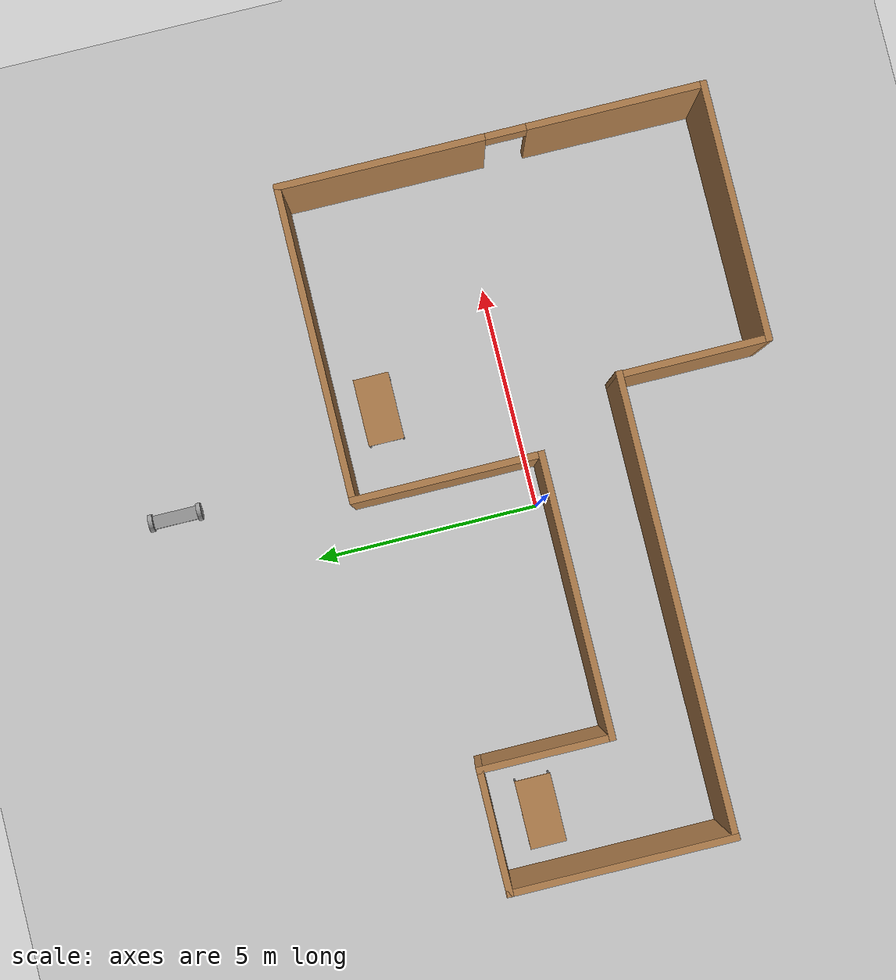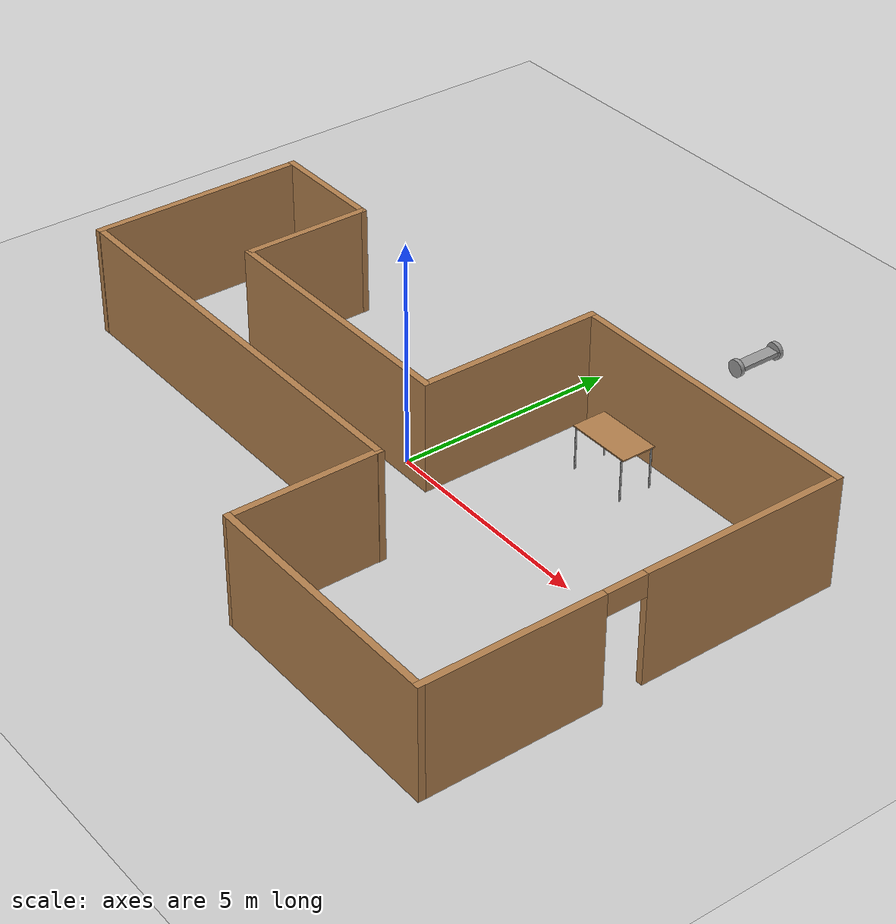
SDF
<sdf version="1.7">
 <world name="default">
  <model name="ground_plane">
   <static>1</static>
   <link name="link">
    <collision name="collision">
     <geometry><plane><normal>0 0 1</normal><size>100 100</size></plane></geometry>
     <surface>
      <contact><collide_bitmask>65535</collide_bitmask></contact>
      <friction><ode><mu>100</mu><mu2>50</mu2></ode></friction>
     </surface>
    </collision>
    <visual name="visual">
     <cast_shadows>0</cast_shadows>
     <geometry><plane><normal>0 0 1</normal><size>100 100</size></plane></geometry>
     <material>
      <script><uri>file://media/materials/scripts/gazebo.material</uri><name>Gazebo/Grey</name></script>
     </material>
    </visual>
   </link>
  </model>
  <model name="robot">
   <link name="link_1">
    <inertial>
     <mass>1</mass>
     <inertia>
      <ixx>0.166667</ixx>
      <ixy>0</ixy>
      <ixz>0</ixz>
      <iyy>0.166667</iyy>
      <iyz>0</iyz>
      <izz>0.166667</izz>
     </inertia>
    </inertial>
    <visual name="visual">
     <geometry><box><size>0.3 1 0.1</size></box></geometry>
     <material>
      <lighting>1</lighting>
      <script><uri>file://media/materials/scripts/gazebo.material</uri><name>Gazebo/Grey</name></script>
      <shader type="pixel"><normal_map>__default__</normal_map></shader>
      <ambient>0.3 0.3 0.3 1</ambient>
      <diffuse>0.7 0.7 0.7 1</diffuse>
      <specular>0.01 0.01 0.01 1</specular>
      <emissive>0 0 0 1</emissive>
     </material>
    </visual>
    <collision name="collision">
     <geometry><box><size>0.3 1 0.1</size></box></geometry>
     <surface>
      <friction>
       <ode><mu>1</mu><mu2>1</mu2><fdir1>0 0 0</fdir1><slip1>0</slip1><slip2>0</slip2></ode>
       <torsional>
        <coefficient>1</coefficient>
        <patch_radius>0</patch_radius>
        <surface_radius>0</surface_radius>
        <use_patch_radius>1</use_patch_radius>
        <ode><slip>0</slip></ode>
       </torsional>
      </friction>
      <bounce><restitution_coefficient>0</restitution_coefficient><threshold>1e+06</threshold></bounce>
      <contact>
       <collide_without_contact>0</collide_without_contact>
       <collide_without_contact_bitmask>1</collide_without_contact_bitmask>
       <collide_bitmask>1</collide_bitmask>
       <ode>
        <soft_cfm>0</soft_cfm>
        <soft_erp>0.2</soft_erp>
        <kp>1e+13</kp>
        <kd>1</kd>
        <max_vel>0.01</max_vel>
        <min_depth>0</min_depth>
       </ode>
       <bullet>
        <split_impulse>1</split_impulse>
        <split_impulse_penetration_threshold>-0.01</split_impulse_penetration_threshold>
        <soft_cfm>0</soft_cfm>
        <soft_erp>0.2</soft_erp>
        <kp>1e+13</kp>
        <kd>1</kd>
       </bullet>
      </contact>
     </surface>
    </collision>
   </link>
   <link name="link_2">
    <inertial>
     <mass>1</mass>
     <inertia><ixx>0.145833</ixx><ixy>0</ixy><ixz>0</ixz><iyy>0.145833</iyy><iyz>0</iyz><izz>0.125</izz></inertia>
    </inertial>
    <pose>0 -0.550019 0 1.5707 -0 0</pose>
    <visual name="visual">
     <geometry><cylinder><radius>0.2</radius><length>0.1</length></cylinder></geometry>
     <material>
      <lighting>1</lighting>
      <script><uri>file://media/materials/scripts/gazebo.material</uri><name>Gazebo/Grey</name></script>
      <shader type="pixel"><normal_map>__default__</normal_map></shader>
      <ambient>0.3 0.3 0.3 1</ambient>
      <diffuse>0.7 0.7 0.7 1</diffuse>
      <specular>0.01 0.01 0.01 1</specular>
      <emissive>0 0 0 1</emissive>
     </material>
    </visual>
    <collision name="collision">
     <geometry><cylinder><radius>0.2</radius><length>0.1</length></cylinder></geometry>
     <surface>
      <friction>
       <ode><mu>1</mu><mu2>1</mu2><fdir1>0 0 0</fdir1><slip1>0</slip1><slip2>0</slip2></ode>
       <torsional>
        <coefficient>1</coefficient>
        <patch_radius>0</patch_radius>
        <surface_radius>0</surface_radius>
        <use_patch_radius>1</use_patch_radius>
        <ode><slip>0</slip></ode>
       </torsional>
      </friction>
      <bounce><restitution_coefficient>0</restitution_coefficient><threshold>1e+06</threshold></bounce>
      <contact>
       <collide_without_contact>0</collide_without_contact>
       <collide_without_contact_bitmask>1</collide_without_contact_bitmask>
       <collide_bitmask>1</collide_bitmask>
       <ode>
        <soft_cfm>0</soft_cfm>
        <soft_erp>0.2</soft_erp>
        <kp>1e+13</kp>
        <kd>1</kd>
        <max_vel>0.01</max_vel>
        <min_depth>0</min_depth>
       </ode>
       <bullet>
        <split_impulse>1</split_impulse>
        <split_impulse_penetration_threshold>-0.01</split_impulse_penetration_threshold>
        <soft_cfm>0</soft_cfm>
        <soft_erp>0.2</soft_erp>
        <kp>1e+13</kp>
        <kd>1</kd>
       </bullet>
      </contact>
     </surface>
    </collision>
   </link>
   <link name="link_2_clone">
    <inertial>
     <mass>1</mass>
     <inertia><ixx>0.145833</ixx><ixy>0</ixy><ixz>0</ixz><iyy>0.145833</iyy><iyz>0</iyz><izz>0.125</izz></inertia>
    </inertial>
    <pose>0 0.550019 0 1.5707 -0 0</pose>
    <visual name="visual">
     <geometry><cylinder><radius>0.2</radius><length>0.1</length></cylinder></geometry>
     <material>
      <lighting>1</lighting>
      <script><uri>file://media/materials/scripts/gazebo.material</uri><name>Gazebo/Grey</name></script>
      <shader type="pixel"><normal_map>__default__</normal_map></shader>
      <ambient>0.3 0.3 0.3 1</ambient>
      <diffuse>0.7 0.7 0.7 1</diffuse>
      <specular>0.01 0.01 0.01 1</specular>
      <emissive>0 0 0 1</emissive>
     </material>
    </visual>
    <collision name="collision">
     <geometry><cylinder><radius>0.2</radius><length>0.1</length></cylinder></geometry>
     <surface>
      <friction>
       <ode><mu>1</mu><mu2>1</mu2><fdir1>0 0 0</fdir1><slip1>0</slip1><slip2>0</slip2></ode>
       <torsional>
        <coefficient>1</coefficient>
        <patch_radius>0</patch_radius>
        <surface_radius>0</surface_radius>
        <use_patch_radius>1</use_patch_radius>
        <ode><slip>0</slip></ode>
       </torsional>
      </friction>
      <bounce><restitution_coefficient>0</restitution_coefficient><threshold>1e+06</threshold></bounce>
      <contact>
       <collide_without_contact>0</collide_without_contact>
       <collide_without_contact_bitmask>1</collide_without_contact_bitmask>
       <collide_bitmask>1</collide_bitmask>
       <ode>
        <soft_cfm>0</soft_cfm>
        <soft_erp>0.2</soft_erp>
        <kp>1e+13</kp>
        <kd>1</kd>
        <max_vel>0.01</max_vel>
        <min_depth>0</min_depth>
       </ode>
       <bullet>
        <split_impulse>1</split_impulse>
        <split_impulse_penetration_threshold>-0.01</split_impulse_penetration_threshold>
        <soft_cfm>0</soft_cfm>
        <soft_erp>0.2</soft_erp>
        <kp>1e+13</kp>
        <kd>1</kd>
       </bullet>
      </contact>
     </surface>
    </collision>
   </link>
   <joint name="link_1_JOINT_0" type="revolute">
    <parent>link_1</parent>
    <child>link_2</child>
    <axis>
     <xyz>0 0 1</xyz>
     <limit>
      <lower>-1.79769e+308</lower>
      <upper>1.79769e+308</upper>
      <effort>-1</effort>
      <velocity>-1</velocity>
     </limit>
     <dynamics>
      <spring_reference>0</spring_reference>
      <spring_stiffness>0</spring_stiffness>
      <damping>0</damping>
     </dynamics>
    </axis>
    <physics>
     <ode><limit><cfm>0</cfm><erp>0.2</erp></limit><suspension><cfm>0</cfm><erp>0.2</erp></suspension></ode>
    </physics>
   </joint>
   <joint name="link_1_JOINT_1" type="revolute">
    <parent>link_1</parent>
    <child>link_2_clone</child>
    <axis>
     <xyz>0 0 1</xyz>
     <limit>
      <lower>-1.79769e+308</lower>
      <upper>1.79769e+308</upper>
      <effort>-1</effort>
      <velocity>-1</velocity>
     </limit>
     <dynamics>
      <spring_reference>0</spring_reference>
      <spring_stiffness>0</spring_stiffness>
      <damping>0</damping>
     </dynamics>
    </axis>
    <physics>
     <ode><limit><cfm>0</cfm><erp>0.2</erp></limit><suspension><cfm>0</cfm><erp>0.2</erp></suspension></ode>
    </physics>
   </joint>
   <static>0</static>
   <pose>1.65673 7.87221 0.200005 0 -0 0</pose>
  </model>
  <model name="building">
   <pose>0.01839 -0.458464 0 0 -0 0</pose>
   <link name="Wall_0">
    <collision name="Wall_0_Collision">
     <geometry><box><size>5 0.15 2.5</size></box></geometry>
     <pose>0 0 1.25 0 -0 0</pose>
    </collision>
    <visual name="Wall_0_Visual">
     <pose>0 0 1.25 0 -0 0</pose>
     <geometry><box><size>5 0.15 2.5</size></box></geometry>
     <material>
      <script><uri>file://media/materials/scripts/gazebo.material</uri><name>Gazebo/Wood</name></script>
      <ambient>1 1 1 1</ambient>
     </material>
     <meta><layer>0</layer></meta>
    </visual>
    <pose>-7.78488 0.627645 0 0 -0 1.5708</pose>
   </link>
   <link name="Wall_1">
    <collision name="Wall_1_Collision">
     <geometry><box><size>2.77048 0.15 2.5</size></box></geometry>
     <pose>0 0 1.25 0 -0 0</pose>
    </collision>
    <visual name="Wall_1_Visual">
     <pose>0 0 1.25 0 -0 0</pose>
     <geometry><box><size>2.77048 0.15 2.5</size></box></geometry>
     <material>
      <script><uri>file://media/materials/scripts/gazebo.material</uri><name>Gazebo/Wood</name></script>
      <ambient>1 1 1 1</ambient>
     </material>
     <meta><layer>0</layer></meta>
    </visual>
    <pose>-6.47488 3.06265 0 0 -0 0</pose>
   </link>
   <link name="Wall_2">
    <collision name="Wall_2_Collision">
     <geometry><box><size>3 0.15 2.5</size></box></geometry>
     <pose>0 0 1.25 0 -0 0</pose>
    </collision>
    <visual name="Wall_2_Visual">
     <pose>0 0 1.25 0 -0 0</pose>
     <geometry><box><size>3 0.15 2.5</size></box></geometry>
     <material>
      <script><uri>file://media/materials/scripts/gazebo.material</uri><name>Gazebo/Wood</name></script>
      <ambient>1 1 1 1</ambient>
     </material>
     <meta><layer>0</layer></meta>
    </visual>
    <pose>-5.16488 1.63765 0 0 -0 -1.5708</pose>
   </link>
   <link name="Wall_3">
    <collision name="Wall_3_Collision">
     <geometry><box><size>6.25 0.15 2.5</size></box></geometry>
     <pose>0 0 1.25 0 -0 0</pose>
    </collision>
    <visual name="Wall_3_Visual">
     <pose>0 0 1.25 0 -0 0</pose>
     <geometry><box><size>6.25 0.15 2.5</size></box></geometry>
     <material>
      <script><uri>file://media/materials/scripts/gazebo.material</uri><name>Gazebo/Wood</name></script>
      <ambient>1 1 1 1</ambient>
     </material>
     <meta><layer>0</layer></meta>
    </visual>
    <pose>-2.11488 0.212646 0 0 -0 0</pose>
   </link>
   <link name="Wall_4">
    <collision name="Wall_4_Collision">
     <geometry><box><size>4.25 0.15 2.5</size></box></geometry>
     <pose>0 0 1.25 0 -0 0</pose>
    </collision>
    <visual name="Wall_4_Visual">
     <pose>0 0 1.25 0 -0 0</pose>
     <geometry><box><size>4.25 0.15 2.5</size></box></geometry>
     <material>
      <script><uri>file://media/materials/scripts/gazebo.material</uri><name>Gazebo/Wood</name></script>
      <ambient>1 1 1 1</ambient>
     </material>
     <meta><layer>0</layer></meta>
    </visual>
    <pose>0.935119 2.26265 0 0 -0 1.5708</pose>
   </link>
   <link name="Wall_5">
    <collision name="Wall_5_Collision">
     <geometry><box><size>7 0.15 2.5</size></box></geometry>
     <pose>0 0 1.25 0 -0 0</pose>
    </collision>
    <visual name="Wall_5_Visual">
     <pose>0 0 1.25 0 -0 0</pose>
     <geometry><box><size>7 0.15 2.5</size></box></geometry>
     <material>
      <script><uri>file://media/materials/scripts/gazebo.material</uri><name>Gazebo/Wood</name></script>
      <ambient>1 1 1 1</ambient>
     </material>
     <meta><layer>0</layer></meta>
    </visual>
    <pose>4.36012 4.31265 0 0 -0 0</pose>
   </link>
   <link name="Wall_6">
    <pose>7.78512 -0.362354 0 0 -0 -1.5708</pose>
    <visual name="Wall_6_Visual_0">
     <pose>-2.4375 0 1.25 0 -0 0</pose>
     <geometry><box><size>4.625 0.15 2.5</size></box></geometry>
     <material>
      <script><uri>file://media/materials/scripts/gazebo.material</uri><name>Gazebo/Wood</name></script>
      <ambient>0.760784 0.662745 0.627451 1</ambient>
     </material>
     <meta><layer>0</layer></meta>
    </visual>
    <collision name="Wall_6_Collision_0">
     <geometry><box><size>4.625 0.15 2.5</size></box></geometry>
     <pose>-2.4375 0 1.25 0 -0 0</pose>
    </collision>
    <visual name="Wall_6_Visual_1">
     <pose>2.7625 0 1.25 0 -0 0</pose>
     <geometry><box><size>3.975 0.15 2.5</size></box></geometry>
     <material>
      <script><uri>file://media/materials/scripts/gazebo.material</uri><name>Gazebo/Wood</name></script>
      <ambient>0.760784 0.662745 0.627451 1</ambient>
     </material>
     <meta><layer>0</layer></meta>
    </visual>
    <collision name="Wall_6_Collision_1">
     <geometry><box><size>3.975 0.15 2.5</size></box></geometry>
     <pose>2.7625 0 1.25 0 -0 0</pose>
    </collision>
    <visual name="Wall_6_Visual_2">
     <pose>0.325 0 2.25 0 -0 0</pose>
     <geometry><box><size>0.9 0.15 0.5</size></box></geometry>
     <material>
      <script><uri>file://media/materials/scripts/gazebo.material</uri><name>Gazebo/Wood</name></script>
      <ambient>0.760784 0.662745 0.627451 1</ambient>
     </material>
     <meta><layer>0</layer></meta>
    </visual>
    <collision name="Wall_6_Collision_2">
     <geometry><box><size>0.9 0.15 0.5</size></box></geometry>
     <pose>0.325 0 2.25 0 -0 0</pose>
    </collision>
   </link>
   <link name="Wall_7">
    <collision name="Wall_7_Collision">
     <geometry><box><size>5.75 0.15 2.5</size></box></geometry>
     <pose>0 0 1.25 0 -0 0</pose>
    </collision>
    <visual name="Wall_7_Visual">
     <pose>0 0 1.25 0 -0 0</pose>
     <geometry><box><size>5.75 0.15 2.5</size></box></geometry>
     <material>
      <script><uri>file://media/materials/scripts/gazebo.material</uri><name>Gazebo/Wood</name></script>
      <ambient>1 1 1 1</ambient>
     </material>
     <meta><layer>0</layer></meta>
    </visual>
    <pose>4.98512 -5.03735 0 0 -0 3.14159</pose>
   </link>
   <link name="Wall_8">
    <collision name="Wall_8_Collision">
     <geometry><box><size>3.40014 0.15 2.5</size></box></geometry>
     <pose>0 0 1.25 0 -0 0</pose>
    </collision>
    <visual name="Wall_8_Visual">
     <pose>0 0 1.25 0 -0 0</pose>
     <geometry><box><size>3.40014 0.15 2.5</size></box></geometry>
     <material>
      <script><uri>file://media/materials/scripts/gazebo.material</uri><name>Gazebo/Wood</name></script>
      <ambient>1 1 1 1</ambient>
     </material>
     <meta><layer>0</layer></meta>
    </visual>
    <pose>2.18012 -3.41235 0 0 -0 1.57387</pose>
   </link>
   <link name="Wall_9">
    <collision name="Wall_9_Collision">
     <geometry><box><size>10 0.15 2.5</size></box></geometry>
     <pose>0 0 1.25 0 -0 0</pose>
    </collision>
    <visual name="Wall_9_Visual">
     <pose>0 0 1.25 0 -0 0</pose>
     <geometry><box><size>10 0.15 2.5</size></box></geometry>
     <material>
      <script><uri>file://media/materials/scripts/gazebo.material</uri><name>Gazebo/Wood</name></script>
      <ambient>1 1 1 1</ambient>
     </material>
     <meta><layer>0</layer></meta>
    </visual>
    <pose>-2.73988 -1.78735 0 0 -0 3.14159</pose>
   </link>
   <static>1</static>
  </model>
  <model name="table_0">
   <static>1</static>
   <link name="link">
    <collision name="surface">
     <pose>0 0 1 0 -0 0</pose>
     <geometry><box><size>1.5 0.8 0.03</size></box></geometry>
     <surface><friction><ode><mu>0.6</mu><mu2>0.6</mu2></ode></friction></surface>
    </collision>
    <visual name="visual1">
     <pose>0 0 1 0 -0 0</pose>
     <geometry><box><size>1.5 0.8 0.03</size></box></geometry>
     <material>
      <script><uri>file://media/materials/scripts/gazebo.material</uri><name>Gazebo/Wood</name></script>
     </material>
    </visual>
    <collision name="front_left_leg">
     <pose>0.68 0.38 0.5 0 -0 0</pose>
     <geometry><cylinder><radius>0.02</radius><length>1</length></cylinder></geometry>
    </collision>
    <visual name="front_left_leg">
     <pose>0.68 0.38 0.5 0 -0 0</pose>
     <geometry><cylinder><radius>0.02</radius><length>1</length></cylinder></geometry>
     <material>
      <script><uri>file://media/materials/scripts/gazebo.material</uri><name>Gazebo/Grey</name></script>
     </material>
    </visual>
    <collision name="front_right_leg">
     <pose>0.68 -0.38 0.5 0 -0 0</pose>
     <geometry><cylinder><radius>0.02</radius><length>1</length></cylinder></geometry>
    </collision>
    <visual name="front_right_leg">
     <pose>0.68 -0.38 0.5 0 -0 0</pose>
     <geometry><cylinder><radius>0.02</radius><length>1</length></cylinder></geometry>
     <material>
      <script><uri>file://media/materials/scripts/gazebo.material</uri><name>Gazebo/Grey</name></script>
     </material>
    </visual>
    <collision name="back_right_leg">
     <pose>-0.68 -0.38 0.5 0 -0 0</pose>
     <geometry><cylinder><radius>0.02</radius><length>1</length></cylinder></geometry>
    </collision>
    <visual name="back_right_leg">
     <pose>-0.68 -0.38 0.5 0 -0 0</pose>
     <geometry><cylinder><radius>0.02</radius><length>1</length></cylinder></geometry>
     <material>
      <script><uri>file://media/materials/scripts/gazebo.material</uri><name>Gazebo/Grey</name></script>
     </material>
    </visual>
    <collision name="back_left_leg">
     <pose>-0.68 0.38 0.5 0 -0 0</pose>
     <geometry><cylinder><radius>0.02</radius><length>1</length></cylinder></geometry>
    </collision>
    <visual name="back_left_leg">
     <pose>-0.68 0.38 0.5 0 -0 0</pose>
     <geometry><cylinder><radius>0.02</radius><length>1</length></cylinder></geometry>
     <material>
      <script><uri>file://media/materials/scripts/gazebo.material</uri><name>Gazebo/Grey</name></script>
     </material>
    </visual>
   </link>
   <pose>2.85109 2.89214 0 0 -0 0</pose>
  </model>
  <model name="table_2">
   <static>1</static>
   <link name="link">
    <collision name="surface">
     <pose>0 0 1 0 -0 0</pose>
     <geometry><box><size>1.5 0.8 0.03</size></box></geometry>
     <surface><friction><ode><mu>0.6</mu><mu2>0.6</mu2></ode></friction></surface>
    </collision>
    <visual name="visual1">
     <pose>0 0 1 0 -0 0</pose>
     <geometry><box><size>1.5 0.8 0.03</size></box></geometry>
     <material>
      <script><uri>file://media/materials/scripts/gazebo.material</uri><name>Gazebo/Wood</name></script>
     </material>
    </visual>
    <collision name="front_left_leg">
     <pose>0.68 0.38 0.5 0 -0 0</pose>
     <geometry><cylinder><radius>0.02</radius><length>1</length></cylinder></geometry>
    </collision>
    <visual name="front_left_leg">
     <pose>0.68 0.38 0.5 0 -0 0</pose>
     <geometry><cylinder><radius>0.02</radius><length>1</length></cylinder></geometry>
     <material>
      <script><uri>file://media/materials/scripts/gazebo.material</uri><name>Gazebo/Grey</name></script>
     </material>
    </visual>
    <collision name="front_right_leg">
     <pose>0.68 -0.38 0.5 0 -0 0</pose>
     <geometry><cylinder><radius>0.02</radius><length>1</length></cylinder></geometry>
    </collision>
    <visual name="front_right_leg">
     <pose>0.68 -0.38 0.5 0 -0 0</pose>
     <geometry><cylinder><radius>0.02</radius><length>1</length></cylinder></geometry>
     <material>
      <script><uri>file://media/materials/scripts/gazebo.material</uri><name>Gazebo/Grey</name></script>
     </material>
    </visual>
    <collision name="back_right_leg">
     <pose>-0.68 -0.38 0.5 0 -0 0</pose>
     <geometry><cylinder><radius>0.02</radius><length>1</length></cylinder></geometry>
    </collision>
    <visual name="back_right_leg">
     <pose>-0.68 -0.38 0.5 0 -0 0</pose>
     <geometry><cylinder><radius>0.02</radius><length>1</length></cylinder></geometry>
     <material>
      <script><uri>file://media/materials/scripts/gazebo.material</uri><name>Gazebo/Grey</name></script>
     </material>
    </visual>
    <collision name="back_left_leg">
     <pose>-0.68 0.38 0.5 0 -0 0</pose>
     <geometry><cylinder><radius>0.02</radius><length>1</length></cylinder></geometry>
    </collision>
    <visual name="back_left_leg">
     <pose>-0.68 0.38 0.5 0 -0 0</pose>
     <geometry><cylinder><radius>0.02</radius><length>1</length></cylinder></geometry>
     <material>
      <script><uri>file://media/materials/scripts/gazebo.material</uri><name>Gazebo/Grey</name></script>
     </material>
    </visual>
   </link>
   <pose>-6.46608 1.54632 0 0 -0 0</pose>
  </model>
 </world>
</sdf>
